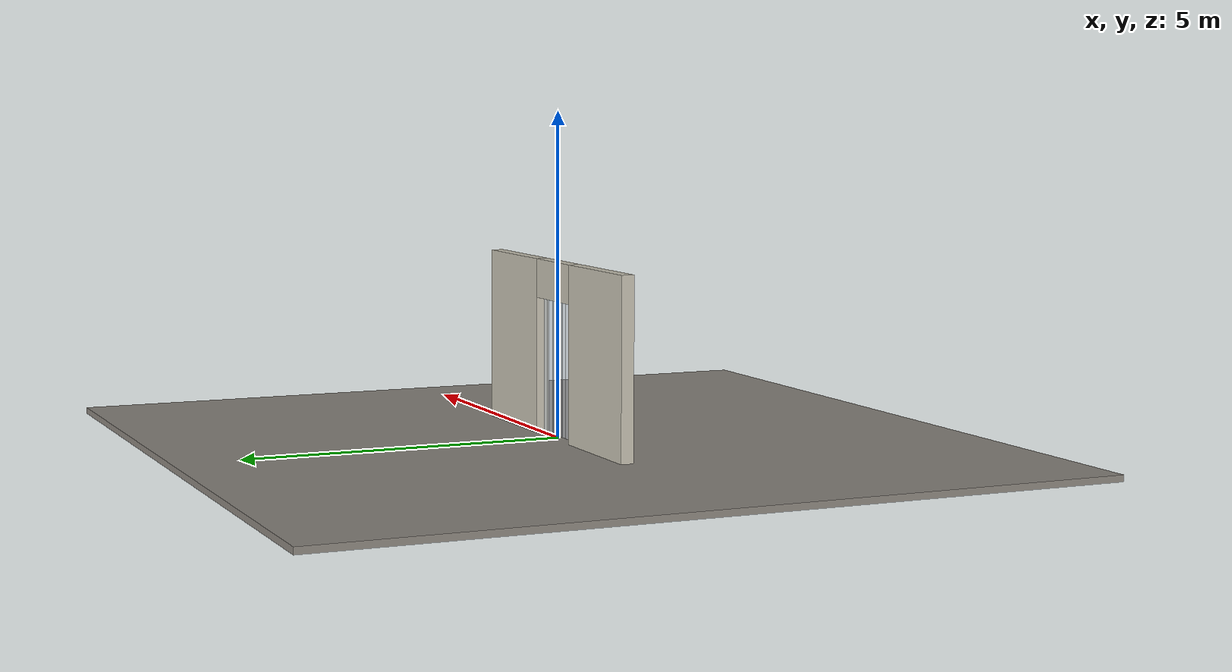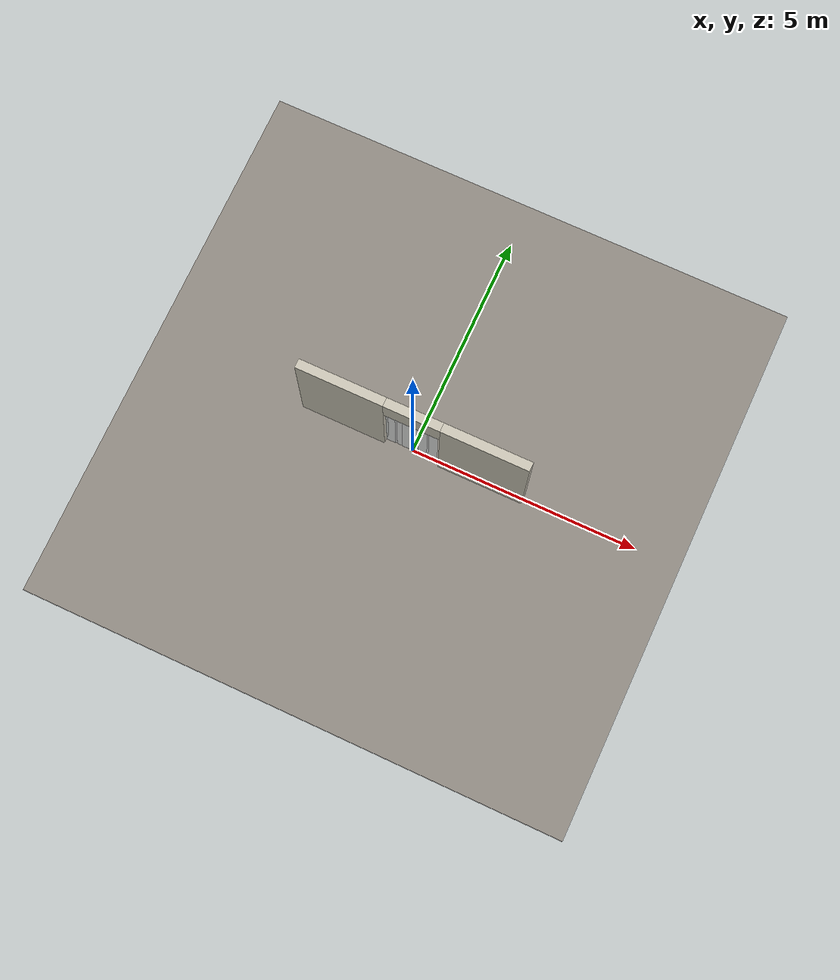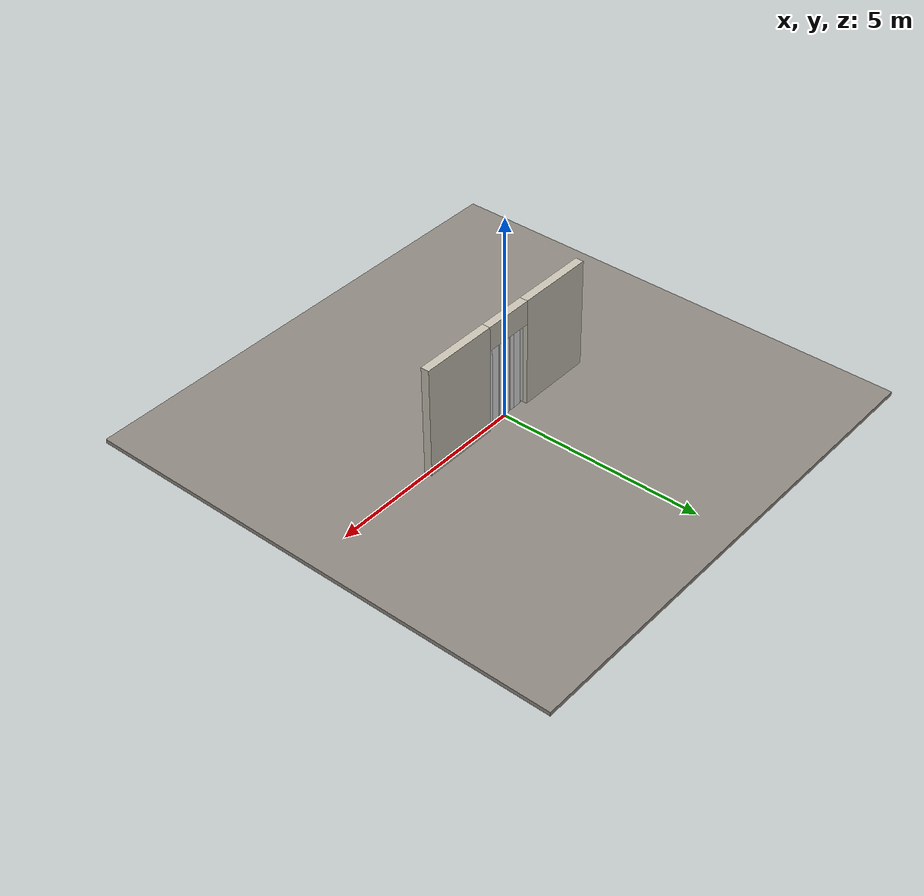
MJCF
<?xml version="1.0" ?>
<mujoco model="db0628_strip_curtain_minimal">
  <compiler angle="radian" meshdir="../../hardware" texturedir="../../textures" autolimits="true" inertiafromgeom="false"/>
  <option timestep="0.002" integrator="implicitfast" cone="elliptic" impratio="10" noslip_iterations="3">
    <flag multiccd="enable"/>
  </option>
  <size memory="16M"/>
  <default>
    <geom condim="4" solref="0.005 1" solimp="0.95 0.99 0.001"/>
    <joint solreflimit="0.005 1" solimplimit="0.95 0.99 0.001"/>
    <tendon solreflimit="0.005 1"/>
    <equality solref="0.002 1"/>
  </default>
  <visual>
    <headlight ambient="0.4 0.4 0.4" diffuse="0.7 0.7 0.7" specular="0.2 0.2 0.2"/>
    <quality shadowsize="4096"/>
    <map znear="0.01" zfar="60"/>
  </visual>
  <asset>
    <material name="mat_floor" rgba="0.55 0.53 0.5 1" specular="0.2" shininess="0.15" reflectance="0"/>
    <material name="mat_wall" rgba="0.78 0.76 0.7 1" specular="0.2" shininess="0.1" reflectance="0"/>
    <material name="mat_frame" rgba="0.75 0.76 0.77 1" specular="0.8" shininess="0.65" reflectance="0.4"/>
    <material name="mat_strip" rgba="0.85 0.9 0.95 0.45" specular="0.2" shininess="0.7" reflectance="0.1"/>
    <texture name="skybox" type="skybox" builtin="gradient" rgb1="0.6 0.7 0.85" rgb2="0.9 0.92 0.95" width="256" height="256"/>
  </asset>
  <worldbody>
    <light name="sun" pos="1.5 -2.5 4" dir="-0.3 0.5 -0.8" directional="true" diffuse="0.8 0.8 0.8" specular="0.3 0.3 0.3" castshadow="true"/>
    <light name="fill" pos="-1.5 2.5 3" dir="0.3 -0.5 -0.7" directional="true" diffuse="0.35 0.35 0.4" castshadow="false"/>
    <camera name="robot_view" pos="0 -2.6125 1.7915" xyaxes="1 0 0 0 0.26963 0.962964" fovy="52"/>
    <camera name="far_view" pos="0 2.6125 1.7915" xyaxes="-1 0 0 0 -0.26963 0.962964" fovy="52"/>
    <camera name="iso" pos="1.9855 -2.1945 2.2095" xyaxes="0.741536 0.670913 0 -0.242917 0.268487 0.932151" fovy="46"/>
    <camera name="detail_handle" pos="0.48 -0.8 1.28" xyaxes="0.97561 0.219512 0 -0.070934 0.315262 0.94635" fovy="38"/>
    <geom name="floor" type="box" size="6 6 0.05" pos="0 0 -0.05" material="mat_floor" group="0" contype="1" conaffinity="1" friction="0.8 0.005 0.0001" density="2400"/>
    <geom name="wall_left" type="box" size="0.945 0.1 1.36" pos="-1.555 0 1.36" material="mat_wall" group="0" contype="1" conaffinity="1" friction="0.6 0.005 0.0001" density="800"/>
    <geom name="wall_right" type="box" size="0.945 0.1 1.36" pos="1.555 0 1.36" material="mat_wall" group="0" contype="1" conaffinity="1" friction="0.6 0.005 0.0001" density="800"/>
    <geom name="wall_header" type="box" size="0.61 0.1 0.3" pos="0 0 2.42" material="mat_wall" group="0" contype="1" conaffinity="1" friction="0.6 0.005 0.0001" density="800"/>
    <geom name="hanger_rail" type="box" size="0.66 0.03 0.03" pos="0 0 2.15" material="mat_frame" group="0" contype="1" conaffinity="1" friction="0.6 0.005 0.0001" density="7900"/>
    <geom name="strip_0_hanger" type="box" size="0.1 0.0055 0.0145" pos="-0.5 -0.0085 2.1275" material="mat_frame" group="1" contype="0" conaffinity="0" density="7900"/>
    <geom name="strip_2_hanger" type="box" size="0.1 0.0055 0.0145" pos="-0.382353 0.0015 2.1275" material="mat_frame" group="1" contype="0" conaffinity="0" density="7900"/>
    <geom name="strip_4_hanger" type="box" size="0.1 0.0055 0.0145" pos="-0.264706 -0.0035 2.1275" material="mat_frame" group="1" contype="0" conaffinity="0" density="7900"/>
    <geom name="strip_6_hanger" type="box" size="0.1 0.0055 0.0145" pos="-0.147059 -0.0085 2.1275" material="mat_frame" group="1" contype="0" conaffinity="0" density="7900"/>
    <geom name="strip_8_hanger" type="box" size="0.1 0.0055 0.0145" pos="-0.029412 0.0015 2.1275" material="mat_frame" group="1" contype="0" conaffinity="0" density="7900"/>
    <geom name="strip_10_hanger" type="box" size="0.1 0.0055 0.0145" pos="0.088235 -0.0035 2.1275" material="mat_frame" group="1" contype="0" conaffinity="0" density="7900"/>
    <geom name="strip_12_hanger" type="box" size="0.1 0.0055 0.0145" pos="0.205882 -0.0085 2.1275" material="mat_frame" group="1" contype="0" conaffinity="0" density="7900"/>
    <geom name="strip_14_hanger" type="box" size="0.1 0.0055 0.0145" pos="0.323529 0.0015 2.1275" material="mat_frame" group="1" contype="0" conaffinity="0" density="7900"/>
    <geom name="strip_16_hanger" type="box" size="0.1 0.0055 0.0145" pos="0.441176 -0.0035 2.1275" material="mat_frame" group="1" contype="0" conaffinity="0" density="7900"/>
    <site name="approach_point" pos="0 -1.5 0" quat="1 0 0 0" size="0.05" rgba="0.2 0.9 0.2 0.5" group="4"/>
    <site name="goal_point" pos="0 1.5 0" quat="1 0 0 0" size="0.05" rgba="0.2 0.9 0.2 0.5" group="4"/>
    <site name="door_plane_center" pos="0 0 1.06" quat="1 0 0 0" size="0.02" rgba="0.2 0.9 0.2 0.5" group="4"/>
    <body name="strip_0" pos="-0.5 -0.0085 2.114">
      <inertial pos="0 0 -1.04" mass="1.621111" quat="-0.5 0.5 0.5 0.5" diaginertia="0.00540492 0.584465808 0.589868296"/>
      <joint name="strip_0_hinge" type="hinge" axis="1 0 0" limited="true" range="-1.48353 1.48353" damping="0.05" frictionloss="0.02" armature="0.005"/>
      <geom name="strip_0_geom" type="box" size="0.1 0.0015 1.04" pos="0 0 -1.04" material="mat_strip" group="0" contype="1" conaffinity="1" friction="0.6 0.005 0.0001" density="1250"/>
    </body>
    <body name="strip_2" pos="-0.382353 0.0015 2.114">
      <inertial pos="0 0 -1.04" mass="1.621111" quat="-0.5 0.5 0.5 0.5" diaginertia="0.00540492 0.584465808 0.589868296"/>
      <joint name="strip_2_hinge" type="hinge" axis="1 0 0" limited="true" range="-1.48353 1.48353" damping="0.05" frictionloss="0.02" armature="0.005"/>
      <geom name="strip_2_geom" type="box" size="0.1 0.0015 1.04" pos="0 0 -1.04" material="mat_strip" group="0" contype="1" conaffinity="1" friction="0.6 0.005 0.0001" density="1250"/>
    </body>
    <body name="strip_4" pos="-0.264706 -0.0035 2.114">
      <inertial pos="0 0 -1.04" mass="1.621111" quat="-0.5 0.5 0.5 0.5" diaginertia="0.00540492 0.584465808 0.589868296"/>
      <joint name="strip_4_hinge" type="hinge" axis="1 0 0" limited="true" range="-1.48353 1.48353" damping="0.05" frictionloss="0.02" armature="0.005"/>
      <geom name="strip_4_geom" type="box" size="0.1 0.0015 1.04" pos="0 0 -1.04" material="mat_strip" group="0" contype="1" conaffinity="1" friction="0.6 0.005 0.0001" density="1250"/>
    </body>
    <body name="strip_6" pos="-0.147059 -0.0085 2.114">
      <inertial pos="0 0 -1.04" mass="1.621111" quat="-0.5 0.5 0.5 0.5" diaginertia="0.00540492 0.584465808 0.589868296"/>
      <joint name="strip_6_hinge" type="hinge" axis="1 0 0" limited="true" range="-1.48353 1.48353" damping="0.05" frictionloss="0.02" armature="0.005"/>
      <geom name="strip_6_geom" type="box" size="0.1 0.0015 1.04" pos="0 0 -1.04" material="mat_strip" group="0" contype="1" conaffinity="1" friction="0.6 0.005 0.0001" density="1250"/>
    </body>
    <body name="strip_8" pos="-0.029412 0.0015 2.114">
      <inertial pos="0 0 -1.04" mass="1.621111" quat="-0.5 0.5 0.5 0.5" diaginertia="0.00540492 0.584465808 0.589868296"/>
      <joint name="strip_8_hinge" type="hinge" axis="1 0 0" limited="true" range="-1.48353 1.48353" damping="0.05" frictionloss="0.02" armature="0.005"/>
      <geom name="strip_8_geom" type="box" size="0.1 0.0015 1.04" pos="0 0 -1.04" material="mat_strip" group="0" contype="1" conaffinity="1" friction="0.6 0.005 0.0001" density="1250"/>
    </body>
    <body name="strip_10" pos="0.088235 -0.0035 2.114">
      <inertial pos="0 0 -1.04" mass="1.621111" quat="-0.5 0.5 0.5 0.5" diaginertia="0.00540492 0.584465808 0.589868296"/>
      <joint name="strip_10_hinge" type="hinge" axis="1 0 0" limited="true" range="-1.48353 1.48353" damping="0.05" frictionloss="0.02" armature="0.005"/>
      <geom name="strip_10_geom" type="box" size="0.1 0.0015 1.04" pos="0 0 -1.04" material="mat_strip" group="0" contype="1" conaffinity="1" friction="0.6 0.005 0.0001" density="1250"/>
    </body>
    <body name="strip_12" pos="0.205882 -0.0085 2.114">
      <inertial pos="0 0 -1.04" mass="1.621111" quat="-0.5 0.5 0.5 0.5" diaginertia="0.00540492 0.584465808 0.589868296"/>
      <joint name="strip_12_hinge" type="hinge" axis="1 0 0" limited="true" range="-1.48353 1.48353" damping="0.05" frictionloss="0.02" armature="0.005"/>
      <geom name="strip_12_geom" type="box" size="0.1 0.0015 1.04" pos="0 0 -1.04" material="mat_strip" group="0" contype="1" conaffinity="1" friction="0.6 0.005 0.0001" density="1250"/>
    </body>
    <body name="strip_14" pos="0.323529 0.0015 2.114">
      <inertial pos="0 0 -1.04" mass="1.621111" quat="-0.5 0.5 0.5 0.5" diaginertia="0.00540492 0.584465808 0.589868296"/>
      <joint name="strip_14_hinge" type="hinge" axis="1 0 0" limited="true" range="-1.48353 1.48353" damping="0.05" frictionloss="0.02" armature="0.005"/>
      <geom name="strip_14_geom" type="box" size="0.1 0.0015 1.04" pos="0 0 -1.04" material="mat_strip" group="0" contype="1" conaffinity="1" friction="0.6 0.005 0.0001" density="1250"/>
    </body>
    <body name="strip_16" pos="0.441176 -0.0035 2.114">
      <inertial pos="0 0 -1.04" mass="1.621111" quat="-0.5 0.5 0.5 0.5" diaginertia="0.00540492 0.584465808 0.589868296"/>
      <joint name="strip_16_hinge" type="hinge" axis="1 0 0" limited="true" range="-1.48353 1.48353" damping="0.05" frictionloss="0.02" armature="0.005"/>
      <geom name="strip_16_geom" type="box" size="0.1 0.0015 1.04" pos="0 0 -1.04" material="mat_strip" group="0" contype="1" conaffinity="1" friction="0.6 0.005 0.0001" density="1250"/>
    </body>
  </worldbody>
  <sensor>
    <jointpos name="strip_0_hinge_pos" joint="strip_0_hinge"/>
    <jointvel name="strip_0_hinge_vel" joint="strip_0_hinge"/>
    <jointpos name="strip_2_hinge_pos" joint="strip_2_hinge"/>
    <jointvel name="strip_2_hinge_vel" joint="strip_2_hinge"/>
    <jointpos name="strip_4_hinge_pos" joint="strip_4_hinge"/>
    <jointvel name="strip_4_hinge_vel" joint="strip_4_hinge"/>
    <jointpos name="strip_6_hinge_pos" joint="strip_6_hinge"/>
    <jointvel name="strip_6_hinge_vel" joint="strip_6_hinge"/>
    <jointpos name="strip_8_hinge_pos" joint="strip_8_hinge"/>
    <jointvel name="strip_8_hinge_vel" joint="strip_8_hinge"/>
    <jointpos name="strip_10_hinge_pos" joint="strip_10_hinge"/>
    <jointvel name="strip_10_hinge_vel" joint="strip_10_hinge"/>
    <jointpos name="strip_12_hinge_pos" joint="strip_12_hinge"/>
    <jointvel name="strip_12_hinge_vel" joint="strip_12_hinge"/>
    <jointpos name="strip_14_hinge_pos" joint="strip_14_hinge"/>
    <jointvel name="strip_14_hinge_vel" joint="strip_14_hinge"/>
    <jointpos name="strip_16_hinge_pos" joint="strip_16_hinge"/>
    <jointvel name="strip_16_hinge_vel" joint="strip_16_hinge"/>
  </sensor>
</mujoco>
